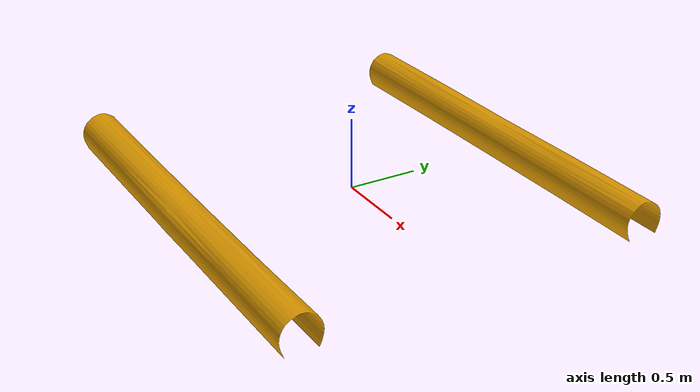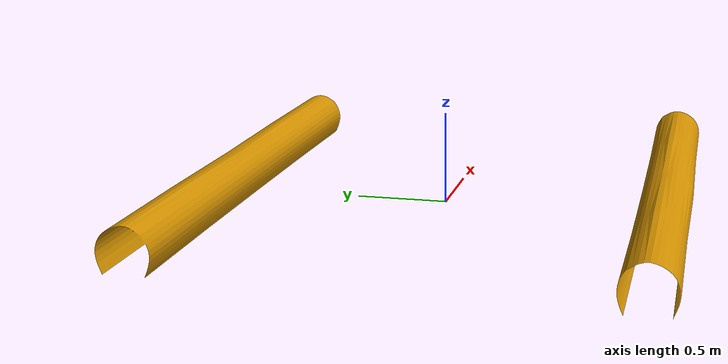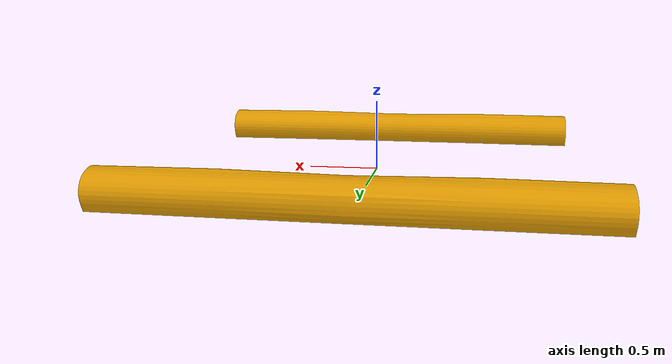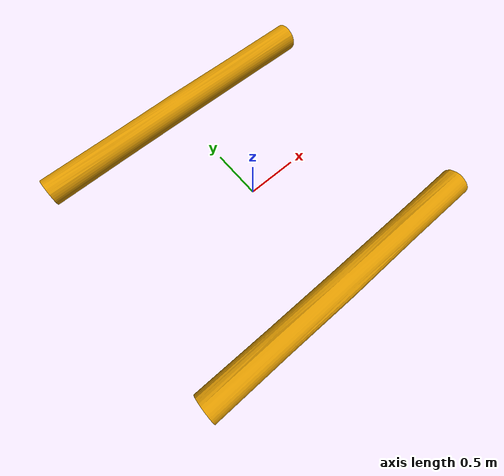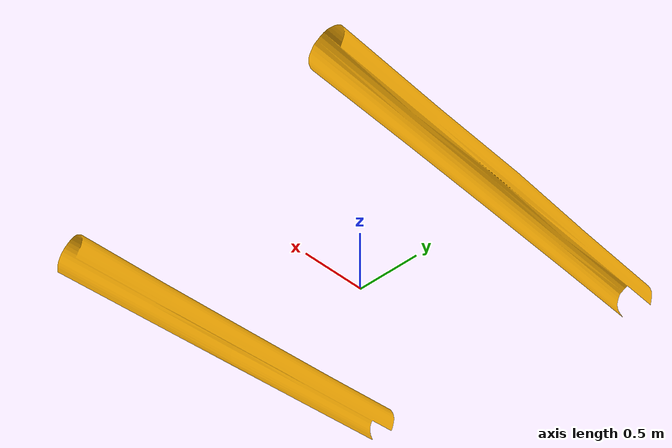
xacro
<?xml version="1.0"?>
<robot name="robot" xmlns:xacro="http://www.ros.org/wiki/xacro">
  <link name="large_racing_edge_straight_complex_link">
    <inertial>
      <origin xyz="0 0 0" rpy="0 0 0"/>
      <mass value="1"/>
      <inertia ixx="1" ixy="0" ixz="0" iyy="1" iyz="0" izz="1"/>
    </inertial>
    <visual>
      <origin xyz="0 0 0" rpy="0 0 0"/>
      <geometry>
        <mesh filename="package://gazebo_race_modules/meshes/large_racing_edge_straight_complex.dae"/>
      </geometry>
    </visual>
    <collision>
      <origin xyz="0 0 0" rpy="0 0 0"/>
      <geometry>
        <mesh filename="package://gazebo_race_modules/meshes/large_racing_edge_straight_complex.dae"/>
      </geometry>
      <surface>
        <friction>
          <ode>
            <mu>100</mu>
            <mu2>50</mu2>
          </ode>
        </friction>
      </surface>
    </collision>
  </link>
  <gazebo> <static>true</static></gazebo>
</robot>
